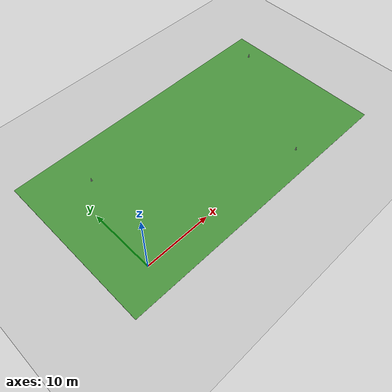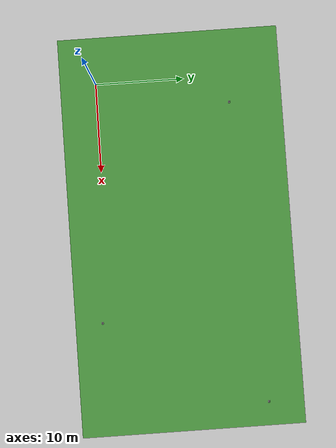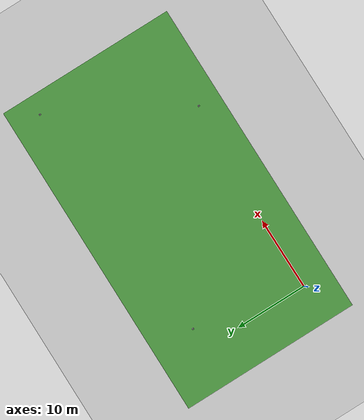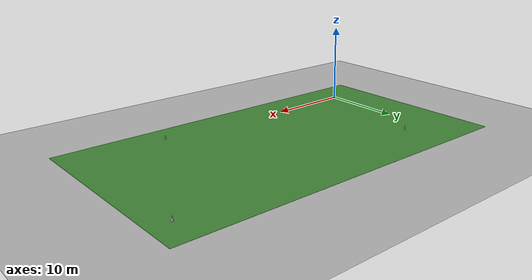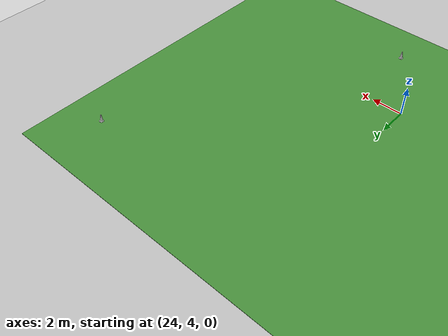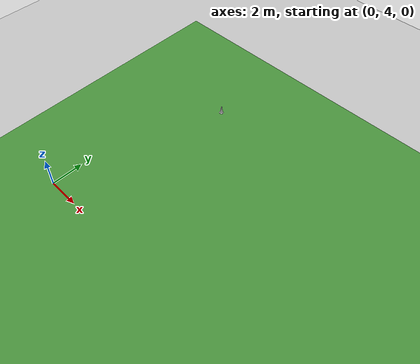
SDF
<sdf version='1.7'>
  <world name='default'>
    <light name='sun' type='directional'>
      <cast_shadows>1</cast_shadows>
      <pose>0 0 10 0 -0 0</pose>
      <diffuse>0.8 0.8 0.8 1</diffuse>
      <specular>0.2 0.2 0.2 1</specular>
      <attenuation>
        <range>1000</range>
        <constant>0.9</constant>
        <linear>0.01</linear>
        <quadratic>0.001</quadratic>
      </attenuation>
      <direction>-0.5 0.1 -0.9</direction>
      <spot>
        <inner_angle>0</inner_angle>
        <outer_angle>0</outer_angle>
        <falloff>0</falloff>
      </spot>
    </light>
    <model name='ground_plane'>
      <static>1</static>
      <link name='link'>
        <collision name='collision'>
          <geometry>
            <plane>
              <normal>0 0 1</normal>
              <size>100 100</size>
            </plane>
          </geometry>
          <surface>
            <contact>
              <collide_bitmask>65535</collide_bitmask>
              <ode/>
            </contact>
            <friction>
              <ode>
                <mu>100</mu>
                <mu2>50</mu2>
              </ode>
              <torsional>
                <ode/>
              </torsional>
            </friction>
            <bounce/>
          </surface>
          <max_contacts>10</max_contacts>
        </collision>
        <visual name='visual'>
          <cast_shadows>0</cast_shadows>
          <geometry>
            <plane>
              <normal>0 0 1</normal>
              <size>100 100</size>
            </plane>
          </geometry>
          <material>
            <diffuse> 0.5 0.5 0.5</diffuse>
            <specular>0.5 0.5 0.5</specular>

            <script>
              <uri>file://media/materials/scripts/gazebo.material</uri>
              <name>Gazebo/Grey</name>
            </script>
          </material>
        </visual>
        <self_collide>0</self_collide>
        <enable_wind>0</enable_wind>
        <kinematic>0</kinematic>
      </link>
    </model>
    <gravity>0 0 -9.8</gravity>
    <magnetic_field>6e-06 2.3e-05 -4.2e-05</magnetic_field>
    <atmosphere type='adiabatic'/>
    <physics type='ode'>
      <max_step_size>0.001</max_step_size>
      <real_time_factor>1</real_time_factor>
      <real_time_update_rate>1000</real_time_update_rate>
    </physics>
    <scene>
      <ambient>0.4 0.4 0.4 1</ambient>
      <background>0.7 0.7 0.7 1</background>
      <shadows>1</shadows>
    </scene>
    <wind/>
    <spherical_coordinates>
      <surface_model>EARTH_WGS84</surface_model>
      <latitude_deg>0</latitude_deg>
      <longitude_deg>0</longitude_deg>
      <elevation>0</elevation>
      <heading_deg>0</heading_deg>
    </spherical_coordinates>
    <model name='Construction Cone'>
      <link name='link'>
        <collision name='collision'>
          <geometry>
            <mesh>
              <scale>5 5 5</scale>
              <uri>model://construction_cone/meshes/construction_cone.dae</uri>
            </mesh>
          </geometry>
          <surface>
            <contact>
              <ode/>
            </contact>
            <bounce/>
            <friction>
              <torsional>
                <ode/>
              </torsional>
              <ode/>
            </friction>
          </surface>
          <max_contacts>10</max_contacts>
        </collision>
        <visual name='visual'>
          <geometry>
            <mesh>
              <scale>5 5 5</scale>
              <uri>model://construction_cone/meshes/construction_cone.dae</uri>
            </mesh>
          </geometry>
          <diffuse>1.0 1.0 1.0</diffuse>
          <specular>1.0 1.0 1.0</specular>
        </visual>
        <self_collide>0</self_collide>
        <inertial>
          <pose>0 0 0 0 -0 0</pose>
          <inertia>
            <ixx>1</ixx>
            <ixy>0</ixy>
            <ixz>0</ixz>
            <iyy>1</iyy>
            <iyz>0</iyz>
            <izz>1</izz>
          </inertia>
          <mass>3</mass>
        </inertial>
        <enable_wind>0</enable_wind>
        <kinematic>0</kinematic>
      </link>
      <pose>37 17 0 0 -0 0</pose>
    </model>
    <model name='Construction Cone_0'>
      <link name='link'>
        <collision name='collision'>
          <geometry>
            <mesh>
              <scale>5 5 5</scale>
              <uri>model://construction_cone/meshes/construction_cone.dae</uri>
            </mesh>
          </geometry>
          <surface>
            <contact>
              <ode/>
            </contact>
            <bounce/>
            <friction>
              <torsional>
                <ode/>
              </torsional>
              <ode/>
            </friction>
          </surface>
          <max_contacts>10</max_contacts>
        </collision>
        <visual name='visual'>
          <geometry>
            <mesh>
              <scale>5 5 5</scale>
              <uri>model://construction_cone/meshes/construction_cone.dae</uri>
            </mesh>
          </geometry>
        </visual>
        <self_collide>0</self_collide>
        <inertial>
          <pose>0 0 0 0 -0 0</pose>
          <inertia>
            <ixx>1</ixx>
            <ixy>0</ixy>
            <ixz>0</ixz>
            <iyy>1</iyy>
            <iyz>0</iyz>
            <izz>1</izz>
          </inertia>
          <mass>3</mass>
        </inertial>
        <enable_wind>0</enable_wind>
        <kinematic>0</kinematic>
      </link>
      <pose>27 -1 0 0 -0 0</pose>
    </model>
    <model name='Construction Cone_1'>
      <link name='link'>
        <collision name='collision'>
          <geometry>
            <mesh>
              <scale>5 5 5</scale>
              <uri>model://construction_cone/meshes/construction_cone.dae</uri>
            </mesh>
          </geometry>
          <surface>
            <contact>
              <ode/>
            </contact>
            <bounce/>
            <friction>
              <torsional>
                <ode/>
              </torsional>
              <ode/>
            </friction>
          </surface>
          <max_contacts>10</max_contacts>
        </collision>
        <visual name='visual'>
          <geometry>
            <mesh>
              <scale>5 5 5</scale>
              <uri>model://construction_cone/meshes/construction_cone.dae</uri>
            </mesh>
          </geometry>
        </visual>
        <self_collide>0</self_collide>
        <inertial>
          <pose>0 0 0 0 -0 0</pose>
          <inertia>
            <ixx>1</ixx>
            <ixy>0</ixy>
            <ixz>0</ixz>
            <iyy>1</iyy>
            <iyz>0</iyz>
            <izz>1</izz>
          </inertia>
          <mass>3</mass>
        </inertial>
        <enable_wind>0</enable_wind>
        <kinematic>0</kinematic>
      </link>
      <pose>3 15 0 0 -0 0</pose>
    </model>
    <gui fullscreen='0'>
      <camera name='user_camera'>
        <pose>13.4099 -29.4238 16.3963 -0 0.407643 1.48419</pose>
        <view_controller>orbit</view_controller>
        <projection_type>perspective</projection_type>
      </camera>
    </gui>
    <model name='robocup_3Dsim_field'>
      <static>1</static>
      <link name='field'>
        <pose>0 0 0.01 0 -0 0</pose>
        <collision name='collision'>
          <geometry>
            <plane>
              <normal>0 0 1</normal>
              <size>45 25</size>
            </plane>
          </geometry>
          <surface>
            <friction>
              <ode>
                <mu>100</mu>
                <mu2>50</mu2>
              </ode>
              <torsional>
                <ode/>
              </torsional>
            </friction>
            <contact>
              <ode/>
            </contact>
            <bounce/>
          </surface>
          <max_contacts>10</max_contacts>
        </collision>
        <visual name='carpet'>
          <cast_shadows>0</cast_shadows>
          <geometry>
            <plane>
              <normal>0 0 1</normal>
              <size>45 25</size>
            </plane>
          </geometry>
          <material>
            <diffuse> 1.0 1.0 1.0</diffuse>
            <specular>1.0 1.0 1.0</specular>
            <pbr>
              <metal>
                <albedo_map>model://robocup_3Dsim_field/materials/textures/field.png</albedo_map>
              </metal>
            </pbr>

            <!-- A versão Ignition do Gazebo não suporta mais material scripts -->
            <script>
              <uri>model://robocup_3Dsim_field/materials/scripts/</uri>
              <uri>model://robocup_3Dsim_field/materials/textures/</uri>
              <name>RoboCup/Grass</name>
            </script>
          </material>
        </visual>
        <self_collide>0</self_collide>
        <enable_wind>0</enable_wind>
        <kinematic>0</kinematic>
      </link>
      <pose>17.1292 8.44986 0 0 -0 0</pose>
    </model>
  </world>
</sdf>
